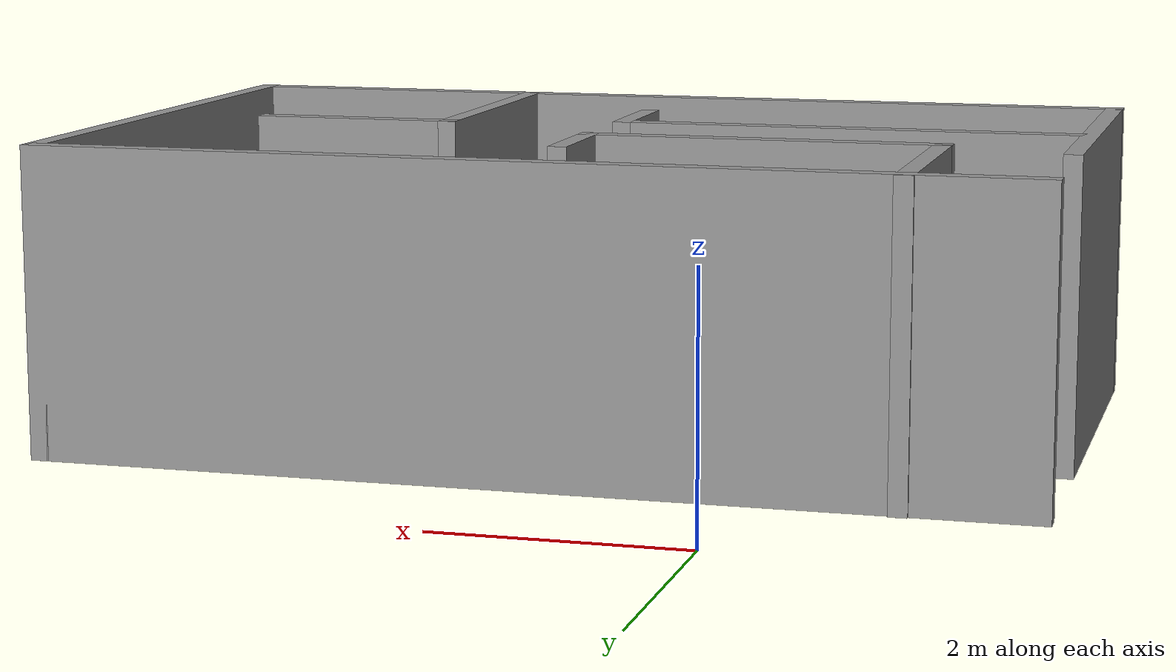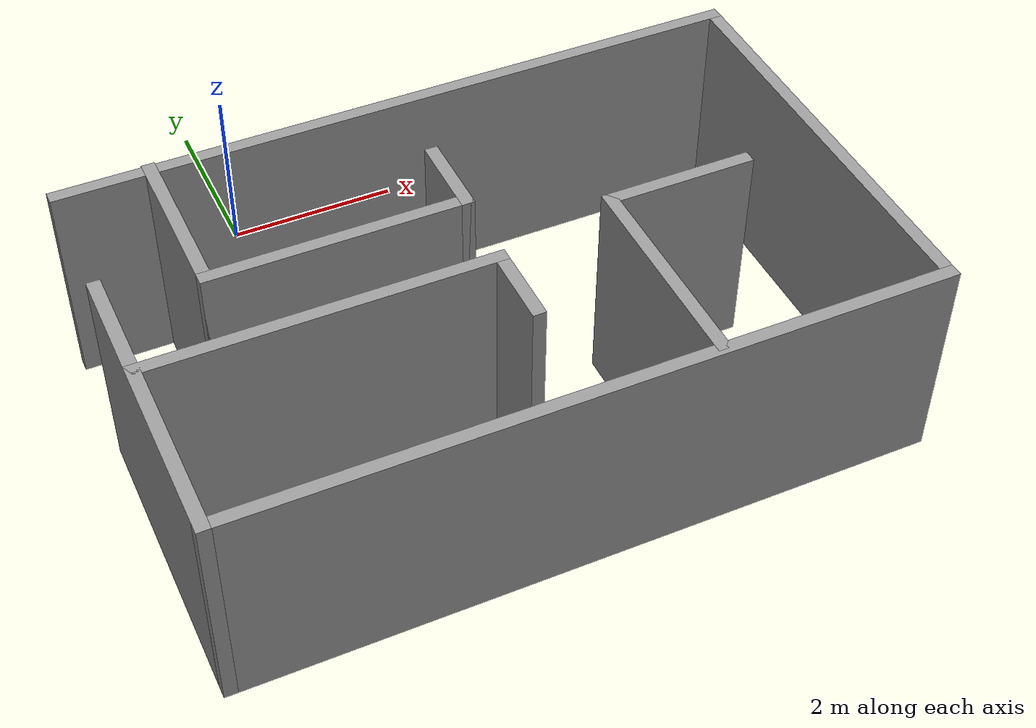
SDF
<?xml version='1.0'?>
<sdf version='1.7'>
  <model name='room'>
    <pose>1.705 -3.1525 0 0 -0 0</pose>
    <link name='Wall_0'>
      <collision name='Wall_0_Collision'>
        <geometry>
          <box>
            <size>8 0.15 2.5</size>
          </box>
        </geometry>
        <pose>0 0 1.25 0 -0 0</pose>
      </collision>
      <visual name='Wall_0_Visual'>
        <pose>0 0 1.25 0 -0 0</pose>
        <geometry>
          <box>
            <size>8 0.15 2.5</size>
          </box>
        </geometry>
        <material>
          <script>
            <uri>file://media/materials/scripts/gazebo.material</uri>
            <name>Gazebo/Grey</name>
          </script>
          <ambient>1 1 1 1</ambient>
        </material>
        <meta>
          <layer>0</layer>
        </meta>
      </visual>
      <pose>0 1.7725 0 0 -0 0</pose>
    </link>
    <link name='Wall_1'>
      <collision name='Wall_1_Collision'>
        <geometry>
          <box>
            <size>5 0.15 2.5</size>
          </box>
        </geometry>
        <pose>0 0 1.25 0 -0 0</pose>
      </collision>
      <visual name='Wall_1_Visual'>
        <pose>0 0 1.25 0 -0 0</pose>
        <geometry>
          <box>
            <size>5 0.15 2.5</size>
          </box>
        </geometry>
        <material>
          <script>
            <uri>file://media/materials/scripts/gazebo.material</uri>
            <name>Gazebo/Grey</name>
          </script>
          <ambient>1 1 1 1</ambient>
        </material>
        <meta>
          <layer>0</layer>
        </meta>
      </visual>
      <pose>3.925 -0.6525 0 0 -0 -1.5708</pose>
    </link>
    <link name='Wall_11'>
      <collision name='Wall_11_Collision'>
        <geometry>
          <box>
            <size>4 0.15 2.5</size>
          </box>
        </geometry>
        <pose>0 0 1.25 0 -0 0</pose>
      </collision>
      <visual name='Wall_11_Visual'>
        <pose>0 0 1.25 0 -0 0</pose>
        <geometry>
          <box>
            <size>4 0.15 2.5</size>
          </box>
        </geometry>
        <material>
          <script>
            <uri>file://media/materials/scripts/gazebo.material</uri>
            <name>Gazebo/Grey</name>
          </script>
          <ambient>1 1 1 1</ambient>
        </material>
        <meta>
          <layer>0</layer>
        </meta>
      </visual>
      <pose>-1.99928 -0.997043 0 0 -0 0</pose>
    </link>
    <link name='Wall_12'>
      <collision name='Wall_12_Collision'>
        <geometry>
          <box>
            <size>1 0.15 2.5</size>
          </box>
        </geometry>
        <pose>0 0 1.25 0 -0 0</pose>
      </collision>
      <visual name='Wall_12_Visual'>
        <pose>0 0 1.25 0 -0 0</pose>
        <geometry>
          <box>
            <size>1 0.15 2.5</size>
          </box>
        </geometry>
        <material>
          <script>
            <uri>file://media/materials/scripts/gazebo.material</uri>
            <name>Gazebo/Grey</name>
          </script>
          <ambient>1 1 1 1</ambient>
        </material>
        <meta>
          <layer>0</layer>
        </meta>
      </visual>
      <pose>-0.074283 -1.42204 0 0 -0 -1.5708</pose>
    </link>
    <link name='Wall_14'>
      <collision name='Wall_14_Collision'>
        <geometry>
          <box>
            <size>2.5 0.15 2.5</size>
          </box>
        </geometry>
        <pose>0 0 1.25 0 -0 0</pose>
      </collision>
      <visual name='Wall_14_Visual'>
        <pose>0 0 1.25 0 -0 0</pose>
        <geometry>
          <box>
            <size>2.5 0.15 2.5</size>
          </box>
        </geometry>
        <material>
          <script>
            <uri>file://media/materials/scripts/gazebo.material</uri>
            <name>Gazebo/Grey</name>
          </script>
          <ambient>1 1 1 1</ambient>
        </material>
        <meta>
          <layer>0</layer>
        </meta>
      </visual>
      <pose>1.34272 -1.84604 0 0 -0 1.5708</pose>
    </link>
    <link name='Wall_15'>
      <collision name='Wall_15_Collision'>
        <geometry>
          <box>
            <size>1.75 0.15 2.5</size>
          </box>
        </geometry>
        <pose>0 0 1.25 0 -0 0</pose>
      </collision>
      <visual name='Wall_15_Visual'>
        <pose>0 0 1.25 0 -0 0</pose>
        <geometry>
          <box>
            <size>1.75 0.15 2.5</size>
          </box>
        </geometry>
        <material>
          <script>
            <uri>file://media/materials/scripts/gazebo.material</uri>
            <name>Gazebo/Grey</name>
          </script>
          <ambient>1 1 1 1</ambient>
        </material>
        <meta>
          <layer>0</layer>
        </meta>
      </visual>
      <pose>2.14272 -0.671043 0 0 -0 0</pose>
    </link>
    <link name='Wall_19'>
      <collision name='Wall_19_Collision'>
        <geometry>
          <box>
            <size>2 0.15 2.5</size>
          </box>
        </geometry>
        <pose>0 0 1.25 0 -0 0</pose>
      </collision>
      <visual name='Wall_19_Visual'>
        <pose>0 0 1.25 0 -0 0</pose>
        <geometry>
          <box>
            <size>2 0.15 2.5</size>
          </box>
        </geometry>
        <material>
          <script>
            <uri>file://media/materials/scripts/gazebo.material</uri>
            <name>Gazebo/Grey</name>
          </script>
          <ambient>1 1 1 1</ambient>
        </material>
        <meta>
          <layer>0</layer>
        </meta>
      </visual>
      <pose>-2.88928 0.872457 0 0 -0 1.5708</pose>
    </link>
    <link name='Wall_2'>
      <collision name='Wall_2_Collision'>
        <geometry>
          <box>
            <size>8 0.15 2.5</size>
          </box>
        </geometry>
        <pose>0 0 1.25 0 -0 0</pose>
      </collision>
      <visual name='Wall_2_Visual'>
        <pose>0 0 1.25 0 -0 0</pose>
        <geometry>
          <box>
            <size>8 0.15 2.5</size>
          </box>
        </geometry>
        <material>
          <script>
            <uri>file://media/materials/scripts/gazebo.material</uri>
            <name>Gazebo/Grey</name>
          </script>
          <ambient>1 1 1 1</ambient>
        </material>
        <meta>
          <layer>0</layer>
        </meta>
      </visual>
      <pose>0 -3.0775 0 0 -0 3.14159</pose>
    </link>
    <link name='Wall_3'>
      <collision name='Wall_3_Collision'>
        <geometry>
          <box>
            <size>3.5 0.15 2.5</size>
          </box>
        </geometry>
        <pose>0 0 1.25 0 -0 0</pose>
      </collision>
      <visual name='Wall_3_Visual'>
        <pose>0 0 1.25 0 -0 0</pose>
        <geometry>
          <box>
            <size>3.5 0.15 2.5</size>
          </box>
        </geometry>
        <material>
          <script>
            <uri>file://media/materials/scripts/gazebo.material</uri>
            <name>Gazebo/Grey</name>
          </script>
          <ambient>1 1 1 1</ambient>
        </material>
        <meta>
          <layer>0</layer>
        </meta>
      </visual>
      <pose>-3.925 -1.4025 0 0 -0 1.5708</pose>
    </link>
    <link name='Wall_8'>
      <collision name='Wall_8_Collision'>
        <geometry>
          <box>
            <size>3 0.15 2.5</size>
          </box>
        </geometry>
        <pose>0 0 1.25 0 -0 0</pose>
      </collision>
      <visual name='Wall_8_Visual'>
        <pose>0 0 1.25 0 -0 0</pose>
        <geometry>
          <box>
            <size>3 0.15 2.5</size>
          </box>
        </geometry>
        <material>
          <script>
            <uri>file://media/materials/scripts/gazebo.material</uri>
            <name>Gazebo/Grey</name>
          </script>
          <ambient>1 1 1 1</ambient>
        </material>
        <meta>
          <layer>0</layer>
        </meta>
      </visual>
      <pose>-1.46428 -0.052543 0 0 -0 0</pose>
    </link>
    <link name='Wall_9'>
      <collision name='Wall_9_Collision'>
        <geometry>
          <box>
            <size>1 0.15 2.5</size>
          </box>
        </geometry>
        <pose>0 0 1.25 0 -0 0</pose>
      </collision>
      <visual name='Wall_9_Visual'>
        <pose>0 0 1.25 0 -0 0</pose>
        <geometry>
          <box>
            <size>1 0.15 2.5</size>
          </box>
        </geometry>
        <material>
          <script>
            <uri>file://media/materials/scripts/gazebo.material</uri>
            <name>Gazebo/Grey</name>
          </script>
          <ambient>1 1 1 1</ambient>
        </material>
        <meta>
          <layer>0</layer>
        </meta>
      </visual>
      <pose>-0.039283 0.372457 0 0 -0 1.5708</pose>
    </link>
    <static>1</static>
  </model>
</sdf>
